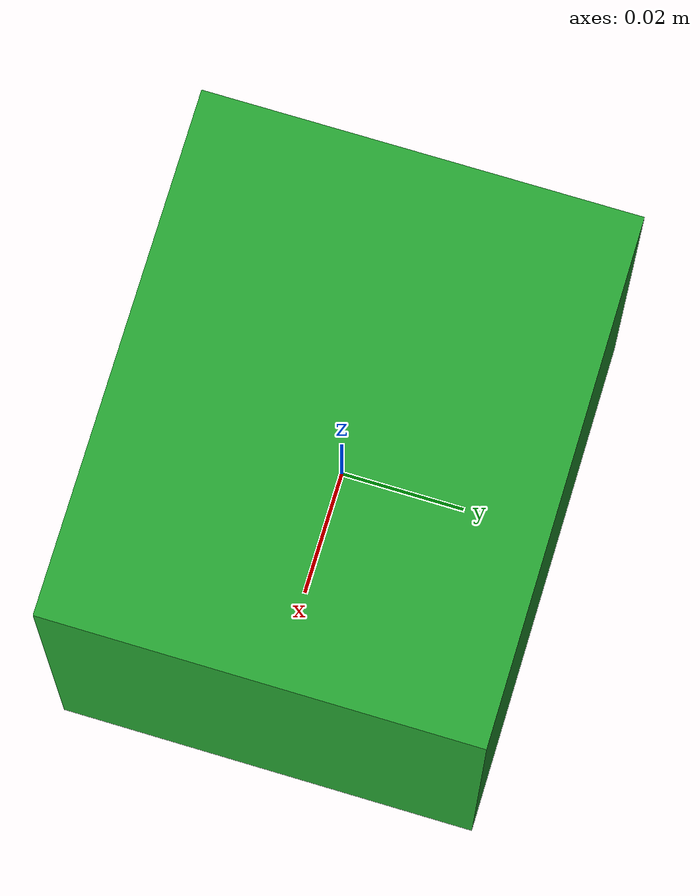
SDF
<?xml version="1.0" ?>
<sdf version="1.5">
  <model name="cube">
	  <static>false</static>
	    <link name="link">
	      <inertial>
		<mass>1.0</mass>
		<inertia>
		  <ixx>0.083</ixx>
		  <ixy>0.0</ixy>
		  <ixz>0.0</ixz>
		  <iyy>0.083</iyy>
		  <iyz>0.0</iyz>
		  <izz>0.083</izz>
		</inertia>
	      </inertial>
	      <collision name="collision">
		<geometry>
		  <box>
		    <size>0.085 0.07 0.08</size>
		  </box>
		</geometry>
	      </collision>
	      <visual name="visual">
		<geometry>
		  <box>
		    <size>0.085 0.07 0.08</size>
		  </box>
		</geometry>
		<material>
	          <script>
	            <uri>file://media/materials/scripts/gazebo.material</uri>
	            <name>Gazebo/Green</name>
	          </script>
        </material>
	      </visual>
	    </link>
    </model>
</sdf>
